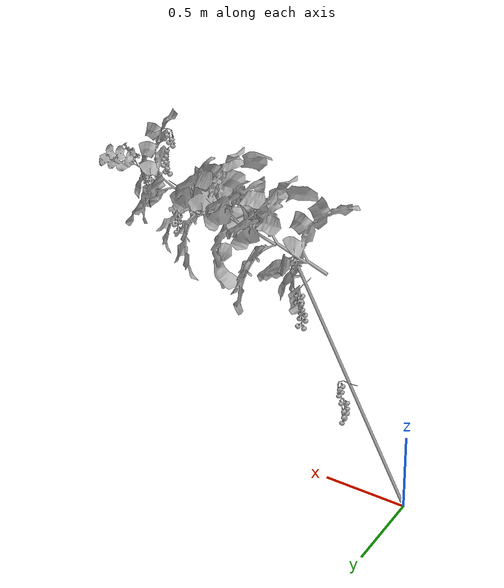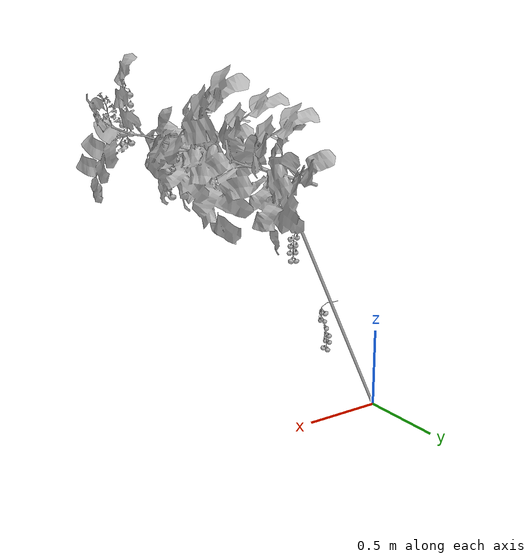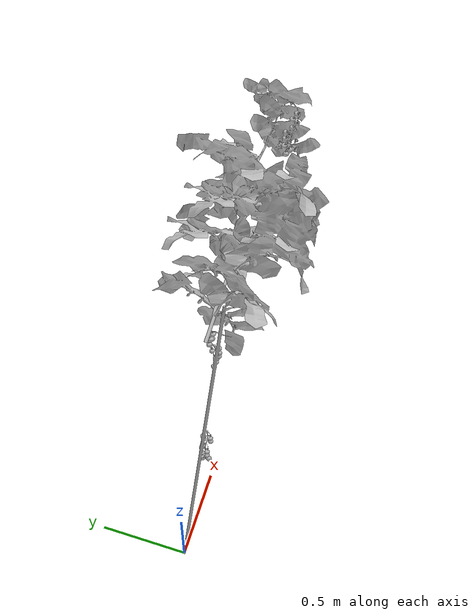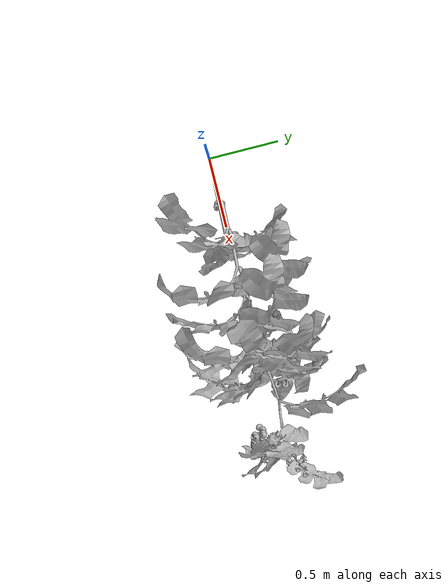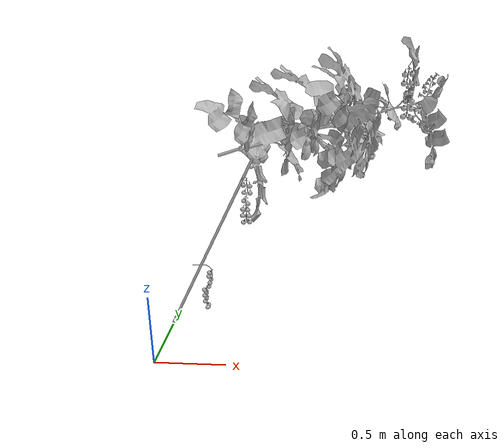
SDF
<?xml version="1.0"?>
<sdf version="1.6">
  <model name="tomato_vine_repo_v3">
    <static>true</static>
    <link name="link">
      <collision name="collision_trunk">
        <geometry><cylinder><radius>0.014</radius><length>1.630</length></cylinder></geometry>
        <pose>0.3618 0 0.7303 0 0.4599 0</pose>
      </collision>
      <visual name="plant">
        <geometry>
          <mesh>
            <uri>model://tomato_vine_repo_v3/meshes/tomato_vine_repo_v3.dae</uri>
          </mesh>
        </geometry>
      </visual>
    </link>
  </model>
</sdf>
